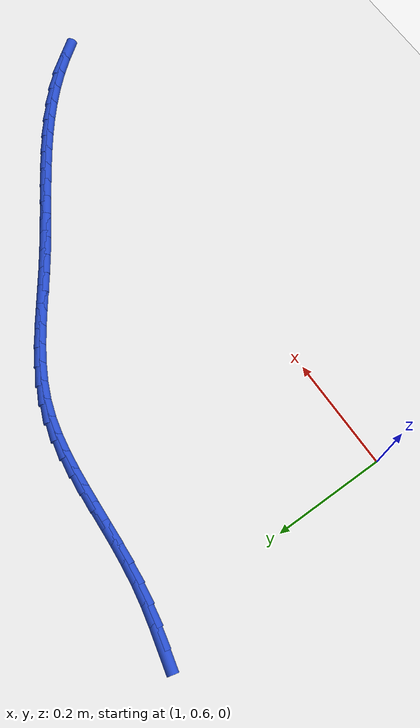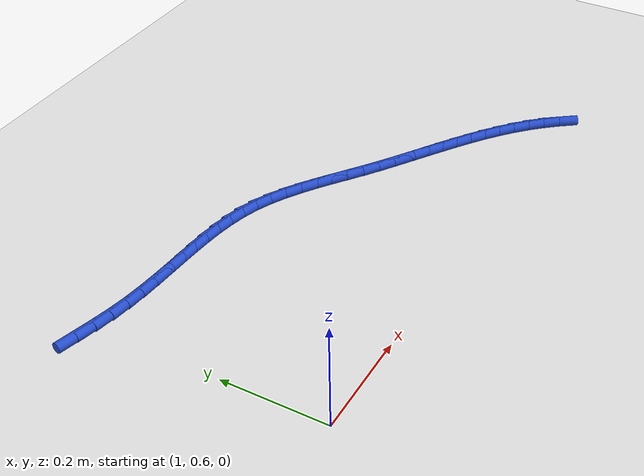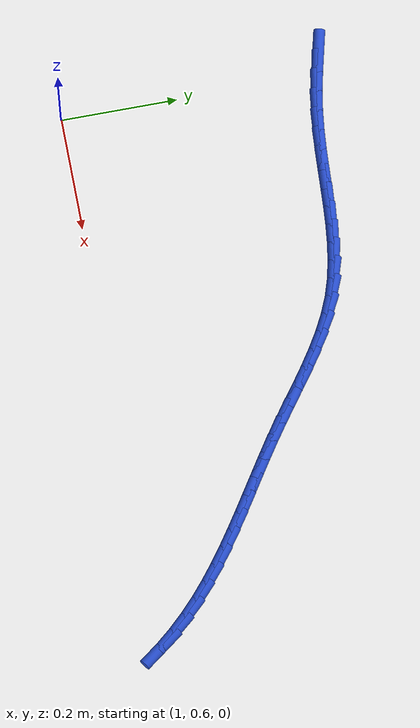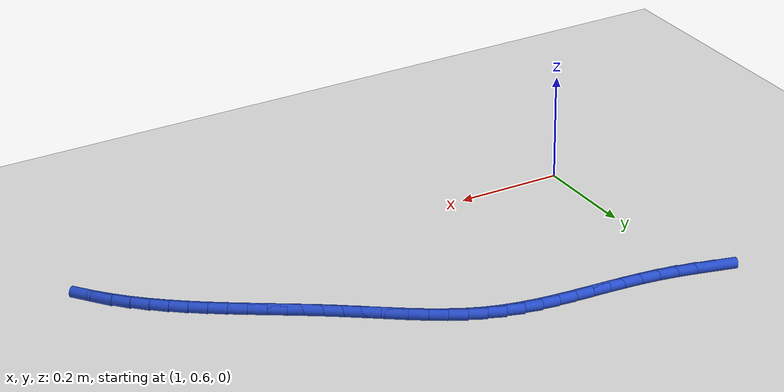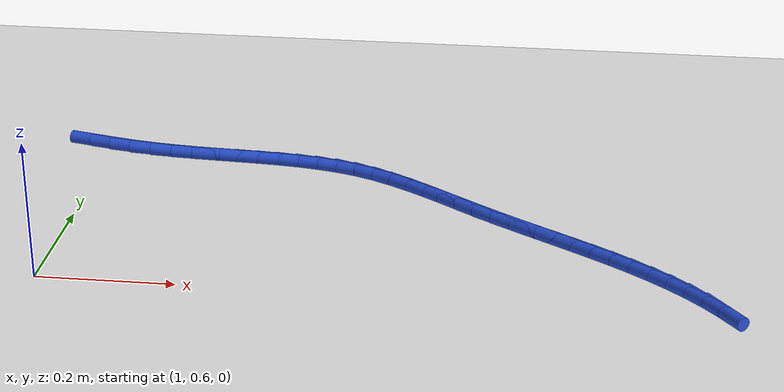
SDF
<sdf version="1.6">
 <world name="default">
  <model name="ground_plane">
   <static>1</static>
   <link name="link">
    <collision name="collision">
     <geometry><plane><normal>0 0 1</normal><size>100 100</size></plane></geometry>
     <surface><friction><ode><mu>100</mu><mu2>50</mu2></ode></friction></surface>
    </collision>
    <visual name="visual">
     <cast_shadows>0</cast_shadows>
     <geometry><plane><normal>0 0 1</normal><size>100 100</size></plane></geometry>
     <material>
      <script><uri>file://media/materials/scripts/gazebo.material</uri><name>Gazebo/WhiteGlow</name></script>
     </material>
    </visual>
   </link>
  </model>
  <model name="line">
   <link name="link_48">
    <pose>0.9635943054780363 1.0526018987636678 0.01 0 1.57 -0.24503280778536315</pose>
    <collision name="collision">
     <geometry><cylinder><radius>0.01</radius><length>0.08</length></cylinder></geometry>
    </collision>
    <visual name="visual">
     <material>
      <script><name>Gazebo/Blue</name><uri>file://media/materials/scripts/gazebo.material</uri></script>
     </material>
     <geometry><cylinder><radius>0.01</radius><length>0.08</length></cylinder></geometry>
    </visual>
   </link>
   <link name="link_49">
    <pose>0.9983586961484471 1.0439088011188016 0.01 0 1.57 -0.22030593380127114</pose>
    <collision name="collision">
     <geometry><cylinder><radius>0.01</radius><length>0.08</length></cylinder></geometry>
    </collision>
    <visual name="visual">
     <material>
      <script><name>Gazebo/Blue</name><uri>file://media/materials/scripts/gazebo.material</uri></script>
     </material>
     <geometry><cylinder><radius>0.01</radius><length>0.08</length></cylinder></geometry>
    </visual>
   </link>
   <link name="link_50">
    <pose>1.0333394777939446 1.0360751812397158 0.01 0 1.57 -0.1721621666128202</pose>
    <collision name="collision">
     <geometry><cylinder><radius>0.01</radius><length>0.08</length></cylinder></geometry>
    </collision>
    <visual name="visual">
     <material>
      <script><name>Gazebo/Blue</name><uri>file://media/materials/scripts/gazebo.material</uri></script>
     </material>
     <geometry><cylinder><radius>0.01</radius><length>0.08</length></cylinder></geometry>
    </visual>
   </link>
   <link name="link_51">
    <pose>1.068337598693716 1.029989584460974 0.01 0 1.57 -0.12309830729193323</pose>
    <collision name="collision">
     <geometry><cylinder><radius>0.01</radius><length>0.08</length></cylinder></geometry>
    </collision>
    <visual name="visual">
     <material>
      <script><name>Gazebo/Blue</name><uri>file://media/materials/scripts/gazebo.material</uri></script>
     </material>
     <geometry><cylinder><radius>0.01</radius><length>0.08</length></cylinder></geometry>
    </visual>
   </link>
   <link name="link_52">
    <pose>1.1032321248833863 1.0256722984018283 0.01 0 1.57 -0.08680786731950309</pose>
    <collision name="collision">
     <geometry><cylinder><radius>0.01</radius><length>0.08</length></cylinder></geometry>
    </collision>
    <visual name="visual">
     <material>
      <script><name>Gazebo/Blue</name><uri>file://media/materials/scripts/gazebo.material</uri></script>
     </material>
     <geometry><cylinder><radius>0.01</radius><length>0.08</length></cylinder></geometry>
    </visual>
   </link>
   <link name="link_53">
    <pose>1.1379464220578168 1.02265123196165 0.01 0 1.57 -0.06383379521660654</pose>
    <collision name="collision">
     <geometry><cylinder><radius>0.01</radius><length>0.08</length></cylinder></geometry>
    </collision>
    <visual name="visual">
     <material>
      <script><name>Gazebo/Blue</name><uri>file://media/materials/scripts/gazebo.material</uri></script>
     </material>
     <geometry><cylinder><radius>0.01</radius><length>0.08</length></cylinder></geometry>
    </visual>
   </link>
   <link name="link_54">
    <pose>1.1724043629581593 1.0204486583575316 0.01 0 1.57 -0.054503697078604765</pose>
    <collision name="collision">
     <geometry><cylinder><radius>0.01</radius><length>0.08</length></cylinder></geometry>
    </collision>
    <visual name="visual">
     <material>
      <script><name>Gazebo/Blue</name><uri>file://media/materials/scripts/gazebo.material</uri></script>
     </material>
     <geometry><cylinder><radius>0.01</radius><length>0.08</length></cylinder></geometry>
    </visual>
   </link>
   <link name="link_55">
    <pose>1.2065298203255672 1.0185868508065683 0.01 0 1.57 -0.05921170057310159</pose>
    <collision name="collision">
     <geometry><cylinder><radius>0.01</radius><length>0.08</length></cylinder></geometry>
    </collision>
    <visual name="visual">
     <material>
      <script><name>Gazebo/Blue</name><uri>file://media/materials/scripts/gazebo.material</uri></script>
     </material>
     <geometry><cylinder><radius>0.01</radius><length>0.08</length></cylinder></geometry>
    </visual>
   </link>
   <link name="link_56">
    <pose>1.2402466669011938 1.016588082525853 0.01 0 1.57 -0.07848096469890384</pose>
    <collision name="collision">
     <geometry><cylinder><radius>0.01</radius><length>0.08</length></cylinder></geometry>
    </collision>
    <visual name="visual">
     <material>
      <script><name>Gazebo/Blue</name><uri>file://media/materials/scripts/gazebo.material</uri></script>
     </material>
     <geometry><cylinder><radius>0.01</radius><length>0.08</length></cylinder></geometry>
    </visual>
   </link>
   <link name="link_57">
    <pose>1.2734787754261914 1.0139746267324798 0.01 0 1.57 -0.11294636685541154</pose>
    <collision name="collision">
     <geometry><cylinder><radius>0.01</radius><length>0.08</length></cylinder></geometry>
    </collision>
    <visual name="visual">
     <material>
      <script><name>Gazebo/Blue</name><uri>file://media/materials/scripts/gazebo.material</uri></script>
     </material>
     <geometry><cylinder><radius>0.01</radius><length>0.08</length></cylinder></geometry>
    </visual>
   </link>
   <link name="link_58">
    <pose>1.3061500186417132 1.010268756643543 0.01 0 1.57 -0.1632336466313724</pose>
    <collision name="collision">
     <geometry><cylinder><radius>0.01</radius><length>0.08</length></cylinder></geometry>
    </collision>
    <visual name="visual">
     <material>
      <script><name>Gazebo/Blue</name><uri>file://media/materials/scripts/gazebo.material</uri></script>
     </material>
     <geometry><cylinder><radius>0.01</radius><length>0.08</length></cylinder></geometry>
    </visual>
   </link>
   <link name="link_59">
    <pose>1.3381842692889123 1.0049927454761358 0.01 0 1.57 -0.22970468994152532</pose>
    <collision name="collision">
     <geometry><cylinder><radius>0.01</radius><length>0.08</length></cylinder></geometry>
    </collision>
    <visual name="visual">
     <material>
      <script><name>Gazebo/Blue</name><uri>file://media/materials/scripts/gazebo.material</uri></script>
     </material>
     <geometry><cylinder><radius>0.01</radius><length>0.08</length></cylinder></geometry>
    </visual>
   </link>
   <link name="link_60">
    <pose>1.369505400108941 0.9976688664473518 0.01 0 1.57 -0.3120563289927454</pose>
    <collision name="collision">
     <geometry><cylinder><radius>0.01</radius><length>0.08</length></cylinder></geometry>
    </collision>
    <visual name="visual">
     <material>
      <script><name>Gazebo/Blue</name><uri>file://media/materials/scripts/gazebo.material</uri></script>
     </material>
     <geometry><cylinder><radius>0.01</radius><length>0.08</length></cylinder></geometry>
    </visual>
   </link>
   <link name="link_61">
    <pose>1.4000372838429531 0.9878193927742857 0.01 0 1.57 -0.4043626671043744</pose>
    <collision name="collision">
     <geometry><cylinder><radius>0.01</radius><length>0.08</length></cylinder></geometry>
    </collision>
    <visual name="visual">
     <material>
      <script><name>Gazebo/Blue</name><uri>file://media/materials/scripts/gazebo.material</uri></script>
     </material>
     <geometry><cylinder><radius>0.01</radius><length>0.08</length></cylinder></geometry>
    </visual>
   </link>
   <link name="link_62">
    <pose>1.429738542899711 0.9751088795616992 0.01 0 1.57 -0.48425307173069393</pose>
    <collision name="collision">
     <geometry><cylinder><radius>0.01</radius><length>0.08</length></cylinder></geometry>
    </collision>
    <visual name="visual">
     <material>
      <script><name>Gazebo/Blue</name><uri>file://media/materials/scripts/gazebo.material</uri></script>
     </material>
     <geometry><cylinder><radius>0.01</radius><length>0.08</length></cylinder></geometry>
    </visual>
   </link>
   <link name="link_63">
    <pose>1.4587283840570773 0.9598593917191135 0.01 0 1.57 -0.5458357475777404</pose>
    <collision name="collision">
     <geometry><cylinder><radius>0.01</radius><length>0.08</length></cylinder></geometry>
    </collision>
    <visual name="visual">
     <material>
      <script><name>Gazebo/Blue</name><uri>file://media/materials/scripts/gazebo.material</uri></script>
     </material>
     <geometry><cylinder><radius>0.01</radius><length>0.08</length></cylinder></geometry>
    </visual>
   </link>
   <link name="link_64">
    <pose>1.4871723692040355 0.9425827943229845 0.01 0 1.57 -0.5900398026535582</pose>
    <collision name="collision">
     <geometry><cylinder><radius>0.01</radius><length>0.08</length></cylinder></geometry>
    </collision>
    <visual name="visual">
     <material>
      <script><name>Gazebo/Blue</name><uri>file://media/materials/scripts/gazebo.material</uri></script>
     </material>
     <geometry><cylinder><radius>0.01</radius><length>0.08</length></cylinder></geometry>
    </visual>
   </link>
   <link name="link_65">
    <pose>1.5152360646995624 0.923790970752076 0.01 0 1.57 -0.6179403597329888</pose>
    <collision name="collision">
     <geometry><cylinder><radius>0.01</radius><length>0.08</length></cylinder></geometry>
    </collision>
    <visual name="visual">
     <material>
      <script><name>Gazebo/Blue</name><uri>file://media/materials/scripts/gazebo.material</uri></script>
     </material>
     <geometry><cylinder><radius>0.01</radius><length>0.08</length></cylinder></geometry>
    </visual>
   </link>
   <link name="link_66">
    <pose>1.5430850369026345 0.9039958043851513 0.01 0 1.57 -0.6304078552292787</pose>
    <collision name="collision">
     <geometry><cylinder><radius>0.01</radius><length>0.08</length></cylinder></geometry>
    </collision>
    <visual name="visual">
     <material>
      <script><name>Gazebo/Blue</name><uri>file://media/materials/scripts/gazebo.material</uri></script>
     </material>
     <geometry><cylinder><radius>0.01</radius><length>0.08</length></cylinder></geometry>
    </visual>
   </link>
   <link name="link_67">
    <pose>1.5708848521722292 0.8837091786009742 0.01 0 1.57 -0.6279404243253499</pose>
    <collision name="collision">
     <geometry><cylinder><radius>0.01</radius><length>0.08</length></cylinder></geometry>
    </collision>
    <visual name="visual">
     <material>
      <script><name>Gazebo/Blue</name><uri>file://media/materials/scripts/gazebo.material</uri></script>
     </material>
     <geometry><cylinder><radius>0.01</radius><length>0.08</length></cylinder></geometry>
    </visual>
   </link>
   <link name="link_68">
    <pose>1.5988010768673222 0.8634429767783078 0.01 0 1.57 -0.6113370738521648</pose>
    <collision name="collision">
     <geometry><cylinder><radius>0.01</radius><length>0.08</length></cylinder></geometry>
    </collision>
    <visual name="visual">
     <material>
      <script><name>Gazebo/Blue</name><uri>file://media/materials/scripts/gazebo.material</uri></script>
     </material>
     <geometry><cylinder><radius>0.01</radius><length>0.08</length></cylinder></geometry>
    </visual>
   </link>
   <link name="link_69">
    <pose>1.6269890333773884 0.8436857296026026 0.01 0 1.57 -0.5921886545657228</pose>
    <collision name="collision">
     <geometry><cylinder><radius>0.01</radius><length>0.08</length></cylinder></geometry>
    </collision>
    <visual name="visual">
     <material>
      <script><name>Gazebo/Blue</name><uri>file://media/materials/scripts/gazebo.material</uri></script>
     </material>
     <geometry><cylinder><radius>0.01</radius><length>0.08</length></cylinder></geometry>
    </visual>
   </link>
   <link name="link_70">
    <pose>1.6554379347549744 0.8245472961515087 0.01 0 1.57 -0.5800627487817785</pose>
    <collision name="collision">
     <geometry><cylinder><radius>0.01</radius><length>0.08</length></cylinder></geometry>
    </collision>
    <visual name="visual">
     <material>
      <script><name>Gazebo/Blue</name><uri>file://media/materials/scripts/gazebo.material</uri></script>
     </material>
     <geometry><cylinder><radius>0.01</radius><length>0.08</length></cylinder></geometry>
    </visual>
   </link>
   <link name="link_71">
    <pose>1.684002226264973 0.8058303117440753 0.01 0 1.57 -0.5753177502461149</pose>
    <collision name="collision">
     <geometry><cylinder><radius>0.01</radius><length>0.08</length></cylinder></geometry>
    </collision>
    <visual name="visual">
     <material>
      <script><name>Gazebo/Blue</name><uri>file://media/materials/scripts/gazebo.material</uri></script>
     </material>
     <geometry><cylinder><radius>0.01</radius><length>0.08</length></cylinder></geometry>
    </visual>
   </link>
   <link name="link_72">
    <pose>1.7125324635462258 0.7873285447025953 0.01 0 1.57 -0.5780449276157446</pose>
    <collision name="collision">
     <geometry><cylinder><radius>0.01</radius><length>0.08</length></cylinder></geometry>
    </collision>
    <visual name="visual">
     <material>
      <script><name>Gazebo/Blue</name><uri>file://media/materials/scripts/gazebo.material</uri></script>
     </material>
     <geometry><cylinder><radius>0.01</radius><length>0.08</length></cylinder></geometry>
    </visual>
   </link>
   <link name="link_73">
    <pose>1.7408792022375723 0.7688357633493633 0.01 0 1.57 -0.5883525462356853</pose>
    <collision name="collision">
     <geometry><cylinder><radius>0.01</radius><length>0.08</length></cylinder></geometry>
    </collision>
    <visual name="visual">
     <material>
      <script><name>Gazebo/Blue</name><uri>file://media/materials/scripts/gazebo.material</uri></script>
     </material>
     <geometry><cylinder><radius>0.01</radius><length>0.08</length></cylinder></geometry>
    </visual>
   </link>
   <link name="link_74">
    <pose>1.7688929979778532 0.7501457360066727 0.01 0 1.57 -0.6063618213171588</pose>
    <collision name="collision">
     <geometry><cylinder><radius>0.01</radius><length>0.08</length></cylinder></geometry>
    </collision>
    <visual name="visual">
     <material>
      <script><name>Gazebo/Blue</name><uri>file://media/materials/scripts/gazebo.material</uri></script>
     </material>
     <geometry><cylinder><radius>0.01</radius><length>0.08</length></cylinder></geometry>
    </visual>
   </link>
   <link name="link_75">
    <pose>1.7964244064059087 0.7310522309968177 0.01 0 1.57 -0.6321891563365754</pose>
    <collision name="collision">
     <geometry><cylinder><radius>0.01</radius><length>0.08</length></cylinder></geometry>
    </collision>
    <visual name="visual">
     <material>
      <script><name>Gazebo/Blue</name><uri>file://media/materials/scripts/gazebo.material</uri></script>
     </material>
     <geometry><cylinder><radius>0.01</radius><length>0.08</length></cylinder></geometry>
    </visual>
   </link>
   <link name="link_76">
    <pose>1.8233239831605799 0.711349016642092 0.01 0 1.57 -0.6659132101681966</pose>
    <collision name="collision">
     <geometry><cylinder><radius>0.01</radius><length>0.08</length></cylinder></geometry>
    </collision>
    <visual name="visual">
     <material>
      <script><name>Gazebo/Blue</name><uri>file://media/materials/scripts/gazebo.material</uri></script>
     </material>
     <geometry><cylinder><radius>0.01</radius><length>0.08</length></cylinder></geometry>
    </visual>
   </link>
   <link name="link_77">
    <pose>1.8494422838807054 0.6908298612647895 0.01 0 1.57 -0.7075260491477365</pose>
    <collision name="collision">
     <geometry><cylinder><radius>0.01</radius><length>0.08</length></cylinder></geometry>
    </collision>
    <visual name="visual">
     <material>
      <script><name>Gazebo/Blue</name><uri>file://media/materials/scripts/gazebo.material</uri></script>
     </material>
     <geometry><cylinder><radius>0.01</radius><length>0.08</length></cylinder></geometry>
    </visual>
   </link>
   <link name="link_78">
    <pose>1.8746298642051278 0.6692885331872044 0.01 0 1.57 -0.7568699731352596</pose>
    <collision name="collision">
     <geometry><cylinder><radius>0.01</radius><length>0.08</length></cylinder></geometry>
    </collision>
    <visual name="visual">
     <material>
      <script><name>Gazebo/Blue</name><uri>file://media/materials/scripts/gazebo.material</uri></script>
     </material>
     <geometry><cylinder><radius>0.01</radius><length>0.08</length></cylinder></geometry>
    </visual>
   </link>
   <link name="link_79">
    <pose>1.898737279772686 0.64651880073163 0.01 0 1.57 -0.8135520943734645</pose>
    <collision name="collision">
     <geometry><cylinder><radius>0.01</radius><length>0.08</length></cylinder></geometry>
    </collision>
    <visual name="visual">
     <material>
      <script><name>Gazebo/Blue</name><uri>file://media/materials/scripts/gazebo.material</uri></script>
     </material>
     <geometry><cylinder><radius>0.01</radius><length>0.08</length></cylinder></geometry>
    </visual>
   </link>
   <link name="link_80">
    <pose>1.9216151747926467 0.622315021158353 0.01 0 1.57 -0.8745964494162569</pose>
    <collision name="collision">
     <geometry><cylinder><radius>0.01</radius><length>0.08</length></cylinder></geometry>
    </collision>
    <visual name="visual">
     <material>
      <script><name>Gazebo/Blue</name><uri>file://media/materials/scripts/gazebo.material</uri></script>
     </material>
     <geometry><cylinder><radius>0.01</radius><length>0.08</length></cylinder></geometry>
    </visual>
   </link>
   <link name="link_81">
    <pose>1.9431296392785855 0.596574256674641 0.01 0 1.57 -0.9349041330027787</pose>
    <collision name="collision">
     <geometry><cylinder><radius>0.01</radius><length>0.08</length></cylinder></geometry>
    </collision>
    <visual name="visual">
     <material>
      <script><name>Gazebo/Blue</name><uri>file://media/materials/scripts/gazebo.material</uri></script>
     </material>
     <geometry><cylinder><radius>0.01</radius><length>0.08</length></cylinder></geometry>
    </visual>
   </link>
  </model>
 </world>
</sdf>
